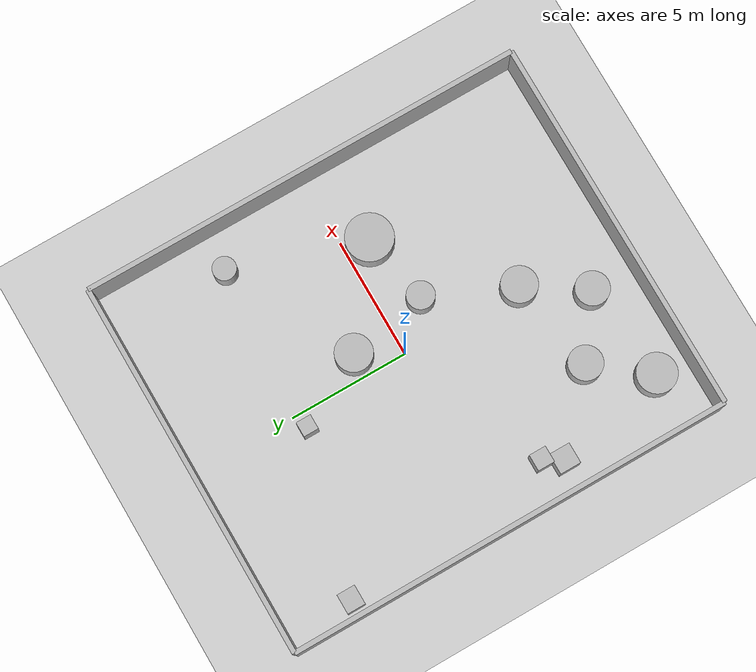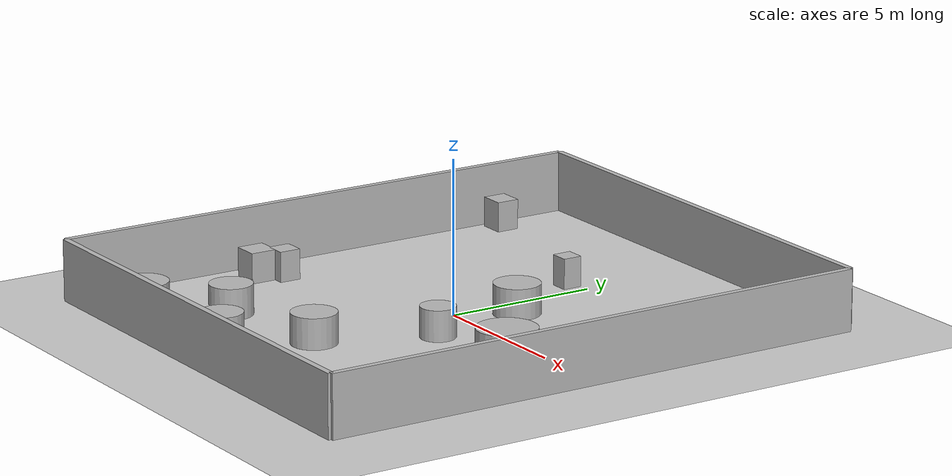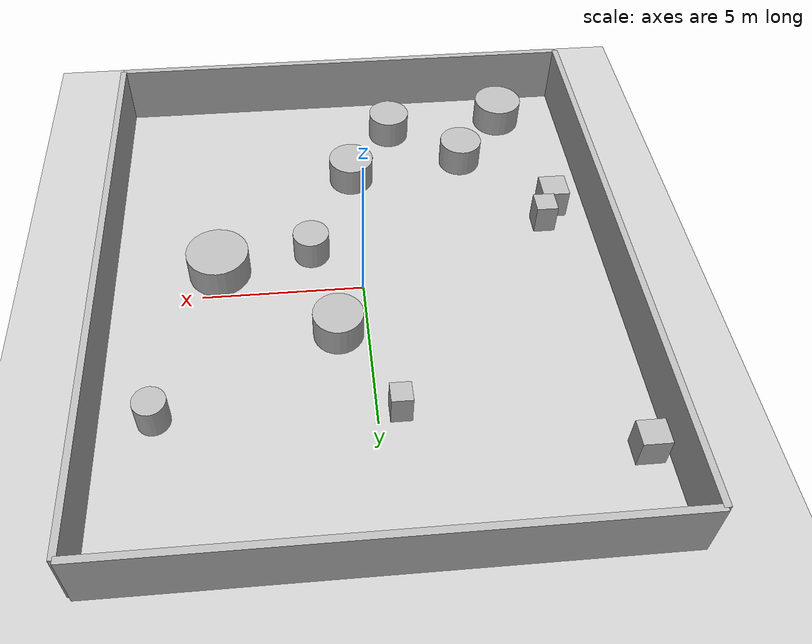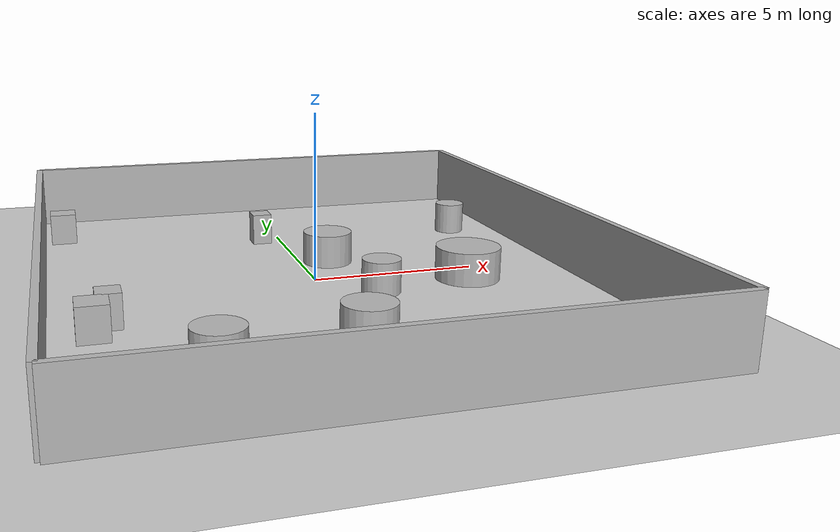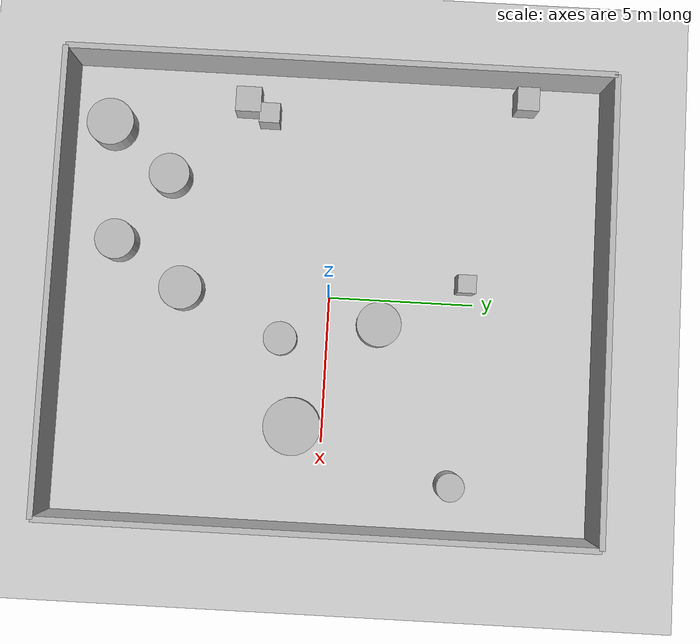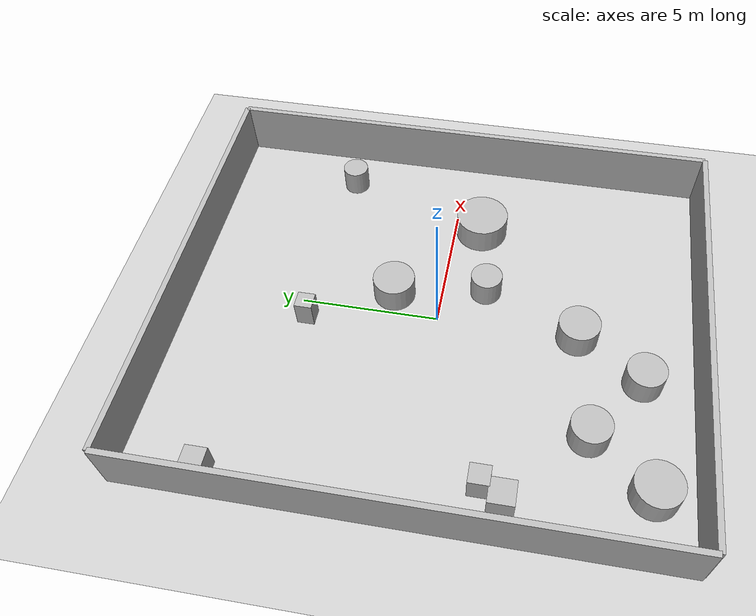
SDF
<?xml version="1.0"?>
<sdf version="1.6">
  <world name="env_57">

    <include><uri>model://ground_plane</uri></include>
    <include><uri>model://sun</uri></include>

    <!-- WALLS -->
    <model name="wall_north"><static>true</static><pose>0 9.273831879482131 1 0 0 0</pose>
      <link name="link"><collision name="collision">
        <geometry><box><size>15.71828731883696 0.2 2</size></box></geometry>
      </collision><visual name="visual">
        <geometry><box><size>15.71828731883696 0.2 2</size></box></geometry>
      </visual></link>
    </model>

    <model name="wall_south"><static>true</static><pose>0 -9.273831879482131 1 0 0 0</pose>
      <link name="link"><collision name="collision">
        <geometry><box><size>15.71828731883696 0.2 2</size></box></geometry>
      </collision><visual name="visual">
        <geometry><box><size>15.71828731883696 0.2 2</size></box></geometry>
      </visual></link>
    </model>

    <model name="wall_east"><static>true</static><pose>7.85914365941848 0 1 0 0 1.57</pose>
      <link name="link"><collision name="collision">
        <geometry><box><size>18.547663758964262 0.2 2</size></box></geometry>
      </collision><visual name="visual">
        <geometry><box><size>18.547663758964262 0.2 2</size></box></geometry>
      </visual></link>
    </model>

    <model name="wall_west"><static>true</static><pose>-7.85914365941848 0 1 0 0 1.57</pose>
      <link name="link"><collision name="collision">
        <geometry><box><size>18.547663758964262 0.2 2</size></box></geometry>
      </collision><visual name="visual">
        <geometry><box><size>18.547663758964262 0.2 2</size></box></geometry>
      </visual></link>
    </model>

    <!-- SENSOR -->

    <model name="lidar_sensor">
      <static>true</static>
      <pose>-0.15338429815543808 -0.3218519796292121 0.4 0 0 0</pose>
      <link name="link">
        <sensor name="lidar" type="ray">
          <pose>0 0 0 0 0 0</pose>
          <visualize>true</visualize>
          <always_on>true</always_on>
          <update_rate>10</update_rate>
          <ray>
            <scan><horizontal>
              <samples>720</samples>
              <resolution>1</resolution>
              <min_angle>-3.14159</min_angle>
              <max_angle>3.14159</max_angle>
            </horizontal></scan>
            <range><min>0.15</min><max>20.0</max><resolution>0.01</resolution></range>
          </ray>
          <plugin name="lidar_plugin" filename="liblidar_plugin.so"/>
        </sensor>
      </link>
    </model>

    <!-- OBSTACLES -->

    <model name="obstacle_0">
      <static>true</static>
      <pose>6.201338716445765 4.398818868364373 0.5 0 0 0</pose>
      <link name="link">
        <collision name="collision">
          <geometry><cylinder><radius>0.48</radius><length>1.0</length></cylinder></geometry>
        </collision>
        <visual name="visual">
          <geometry><cylinder><radius>0.48</radius><length>1.0</length></cylinder></geometry>
        </visual>
      </link>
    </model>

    <model name="obstacle_1">
      <static>true</static>
      <pose>-7.148768748445954 6.49320664834223 0.5 0 0 0</pose>
      <link name="link">
        <collision name="collision">
          <geometry><box><size>0.82 0.76 1.0</size></box></geometry>
        </collision>
        <visual name="visual">
          <geometry><box><size>0.82 0.76 1.0</size></box></geometry>
        </visual>
      </link>
    </model>

    <model name="obstacle_2">
      <static>true</static>
      <pose>-6.61912473708739 -3.122537086771513 0.5 0 0 0</pose>
      <link name="link">
        <collision name="collision">
          <geometry><box><size>0.87 0.88 1.0</size></box></geometry>
        </collision>
        <visual name="visual">
          <geometry><box><size>0.87 0.88 1.0</size></box></geometry>
        </visual>
      </link>
    </model>

    <model name="obstacle_3">
      <static>true</static>
      <pose>-5.577098295781365 -7.818631902613611 0.5 0 0 0</pose>
      <link name="link">
        <collision name="collision">
          <geometry><cylinder><radius>0.81</radius><length>1.0</length></cylinder></geometry>
        </collision>
        <visual name="visual">
          <geometry><cylinder><radius>0.81</radius><length>1.0</length></cylinder></geometry>
        </visual>
      </link>
    </model>

    <model name="obstacle_4">
      <static>true</static>
      <pose>-3.88349365898695 -5.6770215322229225 0.5 0 0 0</pose>
      <link name="link">
        <collision name="collision">
          <geometry><cylinder><radius>0.7</radius><length>1.0</length></cylinder></geometry>
        </collision>
        <visual name="visual">
          <geometry><cylinder><radius>0.7</radius><length>1.0</length></cylinder></geometry>
        </visual>
      </link>
    </model>

    <model name="obstacle_5">
      <static>true</static>
      <pose>-1.5383172311794517 -7.385643933727565 0.5 0 0 0</pose>
      <link name="link">
        <collision name="collision">
          <geometry><cylinder><radius>0.69</radius><length>1.0</length></cylinder></geometry>
        </collision>
        <visual name="visual">
          <geometry><cylinder><radius>0.69</radius><length>1.0</length></cylinder></geometry>
        </visual>
      </link>
    </model>

    <model name="obstacle_6">
      <static>true</static>
      <pose>4.469715057096929 -1.0117292343739699 0.5 0 0 0</pose>
      <link name="link">
        <collision name="collision">
          <geometry><cylinder><radius>0.97</radius><length>1.0</length></cylinder></geometry>
        </collision>
        <visual name="visual">
          <geometry><cylinder><radius>0.97</radius><length>1.0</length></cylinder></geometry>
        </visual>
      </link>
    </model>

    <model name="obstacle_7">
      <static>true</static>
      <pose>0.8872018812257316 1.7469235982574869 0.5 0 0 0</pose>
      <link name="link">
        <collision name="collision">
          <geometry><cylinder><radius>0.76</radius><length>1.0</length></cylinder></geometry>
        </collision>
        <visual name="visual">
          <geometry><cylinder><radius>0.76</radius><length>1.0</length></cylinder></geometry>
        </visual>
      </link>
    </model>

    <model name="obstacle_8">
      <static>true</static>
      <pose>-0.0028313166389928313 -5.047155383057879 0.5 0 0 0</pose>
      <link name="link">
        <collision name="collision">
          <geometry><cylinder><radius>0.74</radius><length>1.0</length></cylinder></geometry>
        </collision>
        <visual name="visual">
          <geometry><cylinder><radius>0.74</radius><length>1.0</length></cylinder></geometry>
        </visual>
      </link>
    </model>

    <model name="obstacle_9">
      <static>true</static>
      <pose>-0.6501182436827264 4.665912174124616 0.5 0 0 0</pose>
      <link name="link">
        <collision name="collision">
          <geometry><box><size>0.62 0.63 1.0</size></box></geometry>
        </collision>
        <visual name="visual">
          <geometry><box><size>0.62 0.63 1.0</size></box></geometry>
        </visual>
      </link>
    </model>

    <model name="obstacle_10">
      <static>true</static>
      <pose>1.5329437315011667 -1.5728913174028527 0.5 0 0 0</pose>
      <link name="link">
        <collision name="collision">
          <geometry><cylinder><radius>0.57</radius><length>1.0</length></cylinder></geometry>
        </collision>
        <visual name="visual">
          <geometry><cylinder><radius>0.57</radius><length>1.0</length></cylinder></geometry>
        </visual>
      </link>
    </model>

    <model name="obstacle_11">
      <static>true</static>
      <pose>-6.1806289983064255 -2.3712265526638188 0.5 0 0 0</pose>
      <link name="link">
        <collision name="collision">
          <geometry><box><size>0.69 0.71 1.0</size></box></geometry>
        </collision>
        <visual name="visual">
          <geometry><box><size>0.69 0.71 1.0</size></box></geometry>
        </visual>
      </link>
    </model>

  </world>
</sdf>
